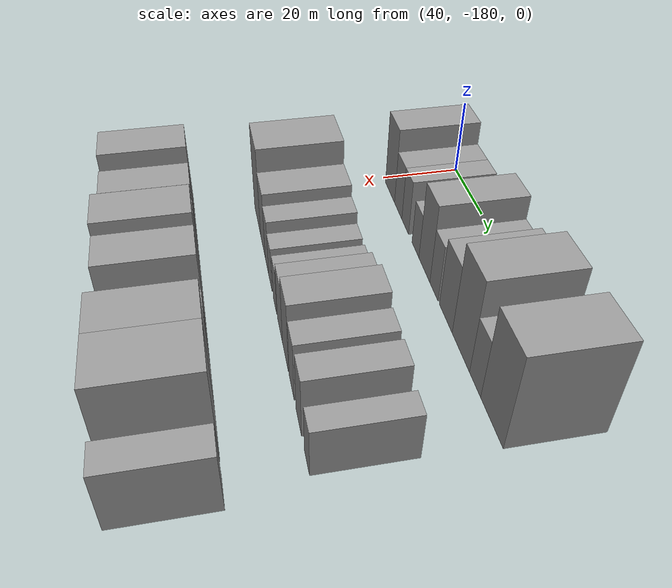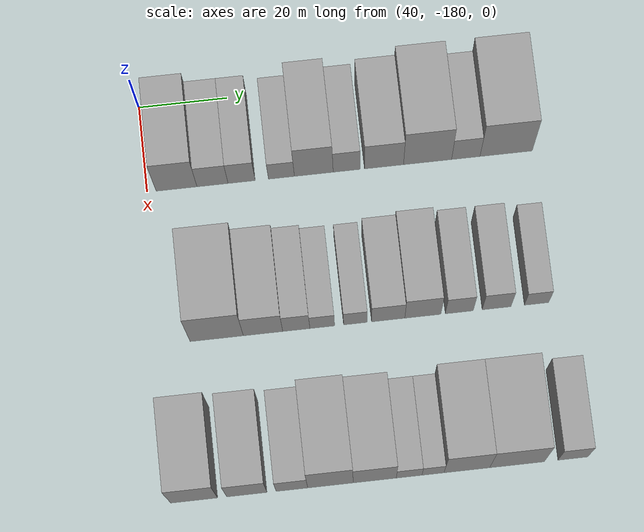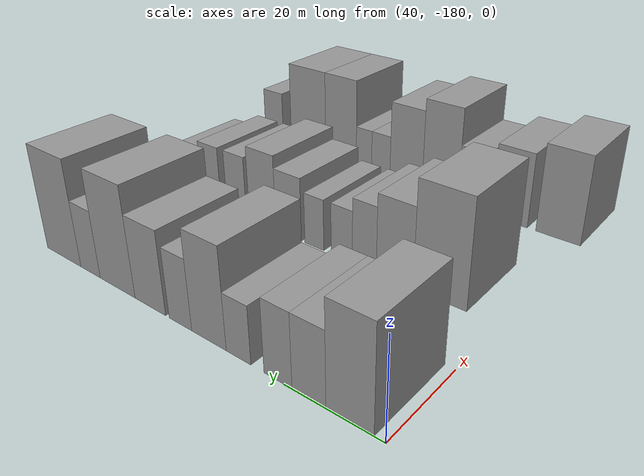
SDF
<sdf version="1.6">
 <world name="default">
  <model name="building_22">
   <static>1</static>
   <pose>50.0000 -173.2821 0 0.000000 0.000000 0.000000</pose>
   <link name="link">
    <pose>0 0 10.50 0 0 0</pose>
    <collision name="collision"><geometry><box><size>20.0000 9.2042 21.0000</size></box></geometry></collision>
    <visual name="visual">
     <cast_shadows>0</cast_shadows>
     <geometry><box><size>20.0000 9.2042 21.0000</size></box></geometry>
     <material>
      <script>
       <uri>model://grey_wall/materials/scripts</uri>
       <uri>model://grey_wall/materials/textures</uri>
       <name>vrc/grey_wall</name>
      </script>
     </material>
    </visual>
   </link>
  </model>
  <model name="building_23">
   <static>1</static>
   <pose>50.0000 -165.1780 0 0.000000 0.000000 0.000000</pose>
   <link name="link">
    <pose>0 0 7.50 0 0 0</pose>
    <collision name="collision"><geometry><box><size>20.0000 7.0040 15.0000</size></box></geometry></collision>
    <visual name="visual">
     <cast_shadows>0</cast_shadows>
     <geometry><box><size>20.0000 7.0040 15.0000</size></box></geometry>
     <material>
      <script>
       <uri>model://grey_wall/materials/scripts</uri>
       <uri>model://grey_wall/materials/textures</uri>
       <name>vrc/grey_wall</name>
      </script>
     </material>
    </visual>
   </link>
  </model>
  <model name="building_24">
   <static>1</static>
   <pose>50.0000 -158.6094 0 0.000000 0.000000 0.000000</pose>
   <link name="link">
    <pose>0 0 7.50 0 0 0</pose>
    <collision name="collision"><geometry><box><size>20.0000 6.1332 15.0000</size></box></geometry></collision>
    <visual name="visual">
     <cast_shadows>0</cast_shadows>
     <geometry><box><size>20.0000 6.1332 15.0000</size></box></geometry>
     <material>
      <script>
       <uri>model://grey_wall/materials/scripts</uri>
       <uri>model://grey_wall/materials/textures</uri>
       <name>vrc/grey_wall</name>
      </script>
     </material>
    </visual>
   </link>
  </model>
  <model name="building_25">
   <static>1</static>
   <pose>50.0000 -149.6114 0 0.000000 0.000000 0.000000</pose>
   <link name="link">
    <pose>0 0 6.00 0 0 0</pose>
    <collision name="collision"><geometry><box><size>20.0000 5.8628 12.0000</size></box></geometry></collision>
    <visual name="visual">
     <cast_shadows>0</cast_shadows>
     <geometry><box><size>20.0000 5.8628 12.0000</size></box></geometry>
     <material>
      <script>
       <uri>model://grey_wall/materials/scripts</uri>
       <uri>model://grey_wall/materials/textures</uri>
       <name>vrc/grey_wall</name>
      </script>
     </material>
    </visual>
   </link>
  </model>
  <model name="building_26">
   <static>1</static>
   <pose>50.0000 -142.3079 0 0.000000 0.000000 0.000000</pose>
   <link name="link">
    <pose>0 0 10.50 0 0 0</pose>
    <collision name="collision"><geometry><box><size>20.0000 8.7442 21.0000</size></box></geometry></collision>
    <visual name="visual">
     <cast_shadows>0</cast_shadows>
     <geometry><box><size>20.0000 8.7442 21.0000</size></box></geometry>
     <material>
      <script>
       <uri>model://grey_wall/materials/scripts</uri>
       <uri>model://grey_wall/materials/textures</uri>
       <name>vrc/grey_wall</name>
      </script>
     </material>
    </visual>
   </link>
  </model>
  <model name="building_27">
   <static>1</static>
   <pose>50.0000 -134.8896 0 0.000000 0.000000 0.000000</pose>
   <link name="link">
    <pose>0 0 7.50 0 0 0</pose>
    <collision name="collision"><geometry><box><size>20.0000 6.0924 15.0000</size></box></geometry></collision>
    <visual name="visual">
     <cast_shadows>0</cast_shadows>
     <geometry><box><size>20.0000 6.0924 15.0000</size></box></geometry>
     <material>
      <script>
       <uri>model://grey_wall/materials/scripts</uri>
       <uri>model://grey_wall/materials/textures</uri>
       <name>vrc/grey_wall</name>
      </script>
     </material>
    </visual>
   </link>
  </model>
  <model name="building_28">
   <static>1</static>
   <pose>50.0000 -126.4223 0 0.000000 0.000000 0.000000</pose>
   <link name="link">
    <pose>0 0 9.00 0 0 0</pose>
    <collision name="collision"><geometry><box><size>20.0000 8.8422 18.0000</size></box></geometry></collision>
    <visual name="visual">
     <cast_shadows>0</cast_shadows>
     <geometry><box><size>20.0000 8.8422 18.0000</size></box></geometry>
     <material>
      <script>
       <uri>model://grey_wall/materials/scripts</uri>
       <uri>model://grey_wall/materials/textures</uri>
       <name>vrc/grey_wall</name>
      </script>
     </material>
    </visual>
   </link>
  </model>
  <model name="building_29">
   <static>1</static>
   <pose>50.0000 -116.5494 0 0.000000 0.000000 0.000000</pose>
   <link name="link">
    <pose>0 0 12.00 0 0 0</pose>
    <collision name="collision"><geometry><box><size>20.0000 10.9035 24.0000</size></box></geometry></collision>
    <visual name="visual">
     <cast_shadows>0</cast_shadows>
     <geometry><box><size>20.0000 10.9035 24.0000</size></box></geometry>
     <material>
      <script>
       <uri>model://grey_wall/materials/scripts</uri>
       <uri>model://grey_wall/materials/textures</uri>
       <name>vrc/grey_wall</name>
      </script>
     </material>
    </visual>
   </link>
  </model>
  <model name="building_30">
   <static>1</static>
   <pose>50.0000 -107.8798 0 0.000000 0.000000 0.000000</pose>
   <link name="link">
    <pose>0 0 7.50 0 0 0</pose>
    <collision name="collision"><geometry><box><size>20.0000 6.4356 15.0000</size></box></geometry></collision>
    <visual name="visual">
     <cast_shadows>0</cast_shadows>
     <geometry><box><size>20.0000 6.4356 15.0000</size></box></geometry>
     <material>
      <script>
       <uri>model://grey_wall/materials/scripts</uri>
       <uri>model://grey_wall/materials/textures</uri>
       <name>vrc/grey_wall</name>
      </script>
     </material>
    </visual>
   </link>
  </model>
  <model name="building_31">
   <static>1</static>
   <pose>50.0000 -98.7202 0 0.000000 0.000000 0.000000</pose>
   <link name="link">
    <pose>0 0 12.00 0 0 0</pose>
    <collision name="collision"><geometry><box><size>20.0000 11.8837 24.0000</size></box></geometry></collision>
    <visual name="visual">
     <cast_shadows>0</cast_shadows>
     <geometry><box><size>20.0000 11.8837 24.0000</size></box></geometry>
     <material>
      <script>
       <uri>model://grey_wall/materials/scripts</uri>
       <uri>model://grey_wall/materials/textures</uri>
       <name>vrc/grey_wall</name>
      </script>
     </material>
    </visual>
   </link>
  </model>
  <model name="building_107">
   <static>1</static>
   <pose>85.0000 -167.5696 0 0.000000 0.000000 0.000000</pose>
   <link name="link">
    <pose>0 0 12.00 0 0 0</pose>
    <collision name="collision"><geometry><box><size>20.0000 11.8075 24.0000</size></box></geometry></collision>
    <visual name="visual">
     <cast_shadows>0</cast_shadows>
     <geometry><box><size>20.0000 11.8075 24.0000</size></box></geometry>
     <material>
      <script>
       <uri>model://grey_wall/materials/scripts</uri>
       <uri>model://grey_wall/materials/textures</uri>
       <name>vrc/grey_wall</name>
      </script>
     </material>
    </visual>
   </link>
  </model>
  <model name="building_108">
   <static>1</static>
   <pose>85.0000 -157.2878 0 0.000000 0.000000 0.000000</pose>
   <link name="link">
    <pose>0 0 9.00 0 0 0</pose>
    <collision name="collision"><geometry><box><size>20.0000 8.7562 18.0000</size></box></geometry></collision>
    <visual name="visual">
     <cast_shadows>0</cast_shadows>
     <geometry><box><size>20.0000 8.7562 18.0000</size></box></geometry>
     <material>
      <script>
       <uri>model://grey_wall/materials/scripts</uri>
       <uri>model://grey_wall/materials/textures</uri>
       <name>vrc/grey_wall</name>
      </script>
     </material>
    </visual>
   </link>
  </model>
  <model name="building_109">
   <static>1</static>
   <pose>85.0000 -149.8974 0 0.000000 0.000000 0.000000</pose>
   <link name="link">
    <pose>0 0 7.50 0 0 0</pose>
    <collision name="collision"><geometry><box><size>20.0000 6.0246 15.0000</size></box></geometry></collision>
    <visual name="visual">
     <cast_shadows>0</cast_shadows>
     <geometry><box><size>20.0000 6.0246 15.0000</size></box></geometry>
     <material>
      <script>
       <uri>model://grey_wall/materials/scripts</uri>
       <uri>model://grey_wall/materials/textures</uri>
       <name>vrc/grey_wall</name>
      </script>
     </material>
    </visual>
   </link>
  </model>
  <model name="building_110">
   <static>1</static>
   <pose>85.0000 -144.1345 0 0.000000 0.000000 0.000000</pose>
   <link name="link">
    <pose>0 0 6.00 0 0 0</pose>
    <collision name="collision"><geometry><box><size>20.0000 5.5012 12.0000</size></box></geometry></collision>
    <visual name="visual">
     <cast_shadows>0</cast_shadows>
     <geometry><box><size>20.0000 5.5012 12.0000</size></box></geometry>
     <material>
      <script>
       <uri>model://grey_wall/materials/scripts</uri>
       <uri>model://grey_wall/materials/textures</uri>
       <name>vrc/grey_wall</name>
      </script>
     </material>
    </visual>
   </link>
  </model>
  <model name="building_111">
   <static>1</static>
   <pose>85.0000 -136.7730 0 0.000000 0.000000 0.000000</pose>
   <link name="link">
    <pose>0 0 6.00 0 0 0</pose>
    <collision name="collision"><geometry><box><size>20.0000 5.2218 12.0000</size></box></geometry></collision>
    <visual name="visual">
     <cast_shadows>0</cast_shadows>
     <geometry><box><size>20.0000 5.2218 12.0000</size></box></geometry>
     <material>
      <script>
       <uri>model://grey_wall/materials/scripts</uri>
       <uri>model://grey_wall/materials/textures</uri>
       <name>vrc/grey_wall</name>
      </script>
     </material>
    </visual>
   </link>
  </model>
  <model name="building_112">
   <static>1</static>
   <pose>85.0000 -129.4617 0 0.000000 0.000000 0.000000</pose>
   <link name="link">
    <pose>0 0 7.50 0 0 0</pose>
    <collision name="collision"><geometry><box><size>20.0000 7.4008 15.0000</size></box></geometry></collision>
    <visual name="visual">
     <cast_shadows>0</cast_shadows>
     <geometry><box><size>20.0000 7.4008 15.0000</size></box></geometry>
     <material>
      <script>
       <uri>model://grey_wall/materials/scripts</uri>
       <uri>model://grey_wall/materials/textures</uri>
       <name>vrc/grey_wall</name>
      </script>
     </material>
    </visual>
   </link>
  </model>
  <model name="building_113">
   <static>1</static>
   <pose>85.0000 -121.7419 0 0.000000 0.000000 0.000000</pose>
   <link name="link">
    <pose>0 0 9.00 0 0 0</pose>
    <collision name="collision"><geometry><box><size>20.0000 8.0388 18.0000</size></box></geometry></collision>
    <visual name="visual">
     <cast_shadows>0</cast_shadows>
     <geometry><box><size>20.0000 8.0388 18.0000</size></box></geometry>
     <material>
      <script>
       <uri>model://grey_wall/materials/scripts</uri>
       <uri>model://grey_wall/materials/textures</uri>
       <name>vrc/grey_wall</name>
      </script>
     </material>
    </visual>
   </link>
  </model>
  <model name="building_114">
   <static>1</static>
   <pose>85.0000 -113.6129 0 0.000000 0.000000 0.000000</pose>
   <link name="link">
    <pose>0 0 7.50 0 0 0</pose>
    <collision name="collision"><geometry><box><size>20.0000 6.2191 15.0000</size></box></geometry></collision>
    <visual name="visual">
     <cast_shadows>0</cast_shadows>
     <geometry><box><size>20.0000 6.2191 15.0000</size></box></geometry>
     <material>
      <script>
       <uri>model://grey_wall/materials/scripts</uri>
       <uri>model://grey_wall/materials/textures</uri>
       <name>vrc/grey_wall</name>
      </script>
     </material>
    </visual>
   </link>
  </model>
  <model name="building_115">
   <static>1</static>
   <pose>85.0000 -105.2906 0 0.000000 0.000000 0.000000</pose>
   <link name="link">
    <pose>0 0 7.50 0 0 0</pose>
    <collision name="collision"><geometry><box><size>20.0000 6.4255 15.0000</size></box></geometry></collision>
    <visual name="visual">
     <cast_shadows>0</cast_shadows>
     <geometry><box><size>20.0000 6.4255 15.0000</size></box></geometry>
     <material>
      <script>
       <uri>model://grey_wall/materials/scripts</uri>
       <uri>model://grey_wall/materials/textures</uri>
       <name>vrc/grey_wall</name>
      </script>
     </material>
    </visual>
   </link>
  </model>
  <model name="building_116">
   <static>1</static>
   <pose>85.0000 -96.3567 0 0.000000 0.000000 0.000000</pose>
   <link name="link">
    <pose>0 0 6.00 0 0 0</pose>
    <collision name="collision"><geometry><box><size>20.0000 5.4422 12.0000</size></box></geometry></collision>
    <visual name="visual">
     <cast_shadows>0</cast_shadows>
     <geometry><box><size>20.0000 5.4422 12.0000</size></box></geometry>
     <material>
      <script>
       <uri>model://grey_wall/materials/scripts</uri>
       <uri>model://grey_wall/materials/textures</uri>
       <name>vrc/grey_wall</name>
      </script>
     </material>
    </visual>
   </link>
  </model>
  <model name="building_184">
   <static>1</static>
   <pose>120.0000 -175.8247 0 0.000000 0.000000 0.000000</pose>
   <link name="link">
    <pose>0 0 10.50 0 0 0</pose>
    <collision name="collision"><geometry><box><size>20.0000 10.2120 21.0000</size></box></geometry></collision>
    <visual name="visual">
     <cast_shadows>0</cast_shadows>
     <geometry><box><size>20.0000 10.2120 21.0000</size></box></geometry>
     <material>
      <script>
       <uri>model://grey_wall/materials/scripts</uri>
       <uri>model://grey_wall/materials/textures</uri>
       <name>vrc/grey_wall</name>
      </script>
     </material>
    </visual>
   </link>
  </model>
  <model name="building_185">
   <static>1</static>
   <pose>120.0000 -164.3295 0 0.000000 0.000000 0.000000</pose>
   <link name="link">
    <pose>0 0 9.00 0 0 0</pose>
    <collision name="collision"><geometry><box><size>20.0000 8.7785 18.0000</size></box></geometry></collision>
    <visual name="visual">
     <cast_shadows>0</cast_shadows>
     <geometry><box><size>20.0000 8.7785 18.0000</size></box></geometry>
     <material>
      <script>
       <uri>model://grey_wall/materials/scripts</uri>
       <uri>model://grey_wall/materials/textures</uri>
       <name>vrc/grey_wall</name>
      </script>
     </material>
    </visual>
   </link>
  </model>
  <model name="building_186">
   <static>1</static>
   <pose>120.0000 -154.4881 0 0.000000 0.000000 0.000000</pose>
   <link name="link">
    <pose>0 0 7.50 0 0 0</pose>
    <collision name="collision"><geometry><box><size>20.0000 6.9041 15.0000</size></box></geometry></collision>
    <visual name="visual">
     <cast_shadows>0</cast_shadows>
     <geometry><box><size>20.0000 6.9041 15.0000</size></box></geometry>
     <material>
      <script>
       <uri>model://grey_wall/materials/scripts</uri>
       <uri>model://grey_wall/materials/textures</uri>
       <name>vrc/grey_wall</name>
      </script>
     </material>
    </visual>
   </link>
  </model>
  <model name="building_187">
   <static>1</static>
   <pose>120.0000 -146.0842 0 0.000000 0.000000 0.000000</pose>
   <link name="link">
    <pose>0 0 12.00 0 0 0</pose>
    <collision name="collision"><geometry><box><size>20.0000 9.9036 24.0000</size></box></geometry></collision>
    <visual name="visual">
     <cast_shadows>0</cast_shadows>
     <geometry><box><size>20.0000 9.9036 24.0000</size></box></geometry>
     <material>
      <script>
       <uri>model://grey_wall/materials/scripts</uri>
       <uri>model://grey_wall/materials/textures</uri>
       <name>vrc/grey_wall</name>
      </script>
     </material>
    </visual>
   </link>
  </model>
  <model name="building_188">
   <static>1</static>
   <pose>120.0000 -136.4127 0 0.000000 0.000000 0.000000</pose>
   <link name="link">
    <pose>0 0 10.50 0 0 0</pose>
    <collision name="collision"><geometry><box><size>20.0000 9.4394 21.0000</size></box></geometry></collision>
    <visual name="visual">
     <cast_shadows>0</cast_shadows>
     <geometry><box><size>20.0000 9.4394 21.0000</size></box></geometry>
     <material>
      <script>
       <uri>model://grey_wall/materials/scripts</uri>
       <uri>model://grey_wall/materials/textures</uri>
       <name>vrc/grey_wall</name>
      </script>
     </material>
    </visual>
   </link>
  </model>
  <model name="building_189">
   <static>1</static>
   <pose>120.0000 -128.8853 0 0.000000 0.000000 0.000000</pose>
   <link name="link">
    <pose>0 0 6.00 0 0 0</pose>
    <collision name="collision"><geometry><box><size>20.0000 5.6155 12.0000</size></box></geometry></collision>
    <visual name="visual">
     <cast_shadows>0</cast_shadows>
     <geometry><box><size>20.0000 5.6155 12.0000</size></box></geometry>
     <material>
      <script>
       <uri>model://grey_wall/materials/scripts</uri>
       <uri>model://grey_wall/materials/textures</uri>
       <name>vrc/grey_wall</name>
      </script>
     </material>
    </visual>
   </link>
  </model>
  <model name="building_190">
   <static>1</static>
   <pose>120.0000 -123.6623 0 0.000000 0.000000 0.000000</pose>
   <link name="link">
    <pose>0 0 6.00 0 0 0</pose>
    <collision name="collision"><geometry><box><size>20.0000 4.8306 12.0000</size></box></geometry></collision>
    <visual name="visual">
     <cast_shadows>0</cast_shadows>
     <geometry><box><size>20.0000 4.8306 12.0000</size></box></geometry>
     <material>
      <script>
       <uri>model://grey_wall/materials/scripts</uri>
       <uri>model://grey_wall/materials/textures</uri>
       <name>vrc/grey_wall</name>
      </script>
     </material>
    </visual>
   </link>
  </model>
  <model name="building_191">
   <static>1</static>
   <pose>120.0000 -116.2233 0 0.000000 0.000000 0.000000</pose>
   <link name="link">
    <pose>0 0 12.00 0 0 0</pose>
    <collision name="collision"><geometry><box><size>20.0000 10.0475 24.0000</size></box></geometry></collision>
    <visual name="visual">
     <cast_shadows>0</cast_shadows>
     <geometry><box><size>20.0000 10.0475 24.0000</size></box></geometry>
     <material>
      <script>
       <uri>model://grey_wall/materials/scripts</uri>
       <uri>model://grey_wall/materials/textures</uri>
       <name>vrc/grey_wall</name>
      </script>
     </material>
    </visual>
   </link>
  </model>
  <model name="building_192">
   <static>1</static>
   <pose>120.0000 -105.1996 0 0.000000 0.000000 0.000000</pose>
   <link name="link">
    <pose>0 0 12.00 0 0 0</pose>
    <collision name="collision"><geometry><box><size>20.0000 11.9999 24.0000</size></box></geometry></collision>
    <visual name="visual">
     <cast_shadows>0</cast_shadows>
     <geometry><box><size>20.0000 11.9999 24.0000</size></box></geometry>
     <material>
      <script>
       <uri>model://grey_wall/materials/scripts</uri>
       <uri>model://grey_wall/materials/textures</uri>
       <name>vrc/grey_wall</name>
      </script>
     </material>
    </visual>
   </link>
  </model>
  <model name="building_193">
   <static>1</static>
   <pose>120.0000 -92.9082 0 0.000000 0.000000 0.000000</pose>
   <link name="link">
    <pose>0 0 7.50 0 0 0</pose>
    <collision name="collision"><geometry><box><size>20.0000 6.5828 15.0000</size></box></geometry></collision>
    <visual name="visual">
     <cast_shadows>0</cast_shadows>
     <geometry><box><size>20.0000 6.5828 15.0000</size></box></geometry>
     <material>
      <script>
       <uri>model://grey_wall/materials/scripts</uri>
       <uri>model://grey_wall/materials/textures</uri>
       <name>vrc/grey_wall</name>
      </script>
     </material>
    </visual>
   </link>
  </model>
 </world>
</sdf>
